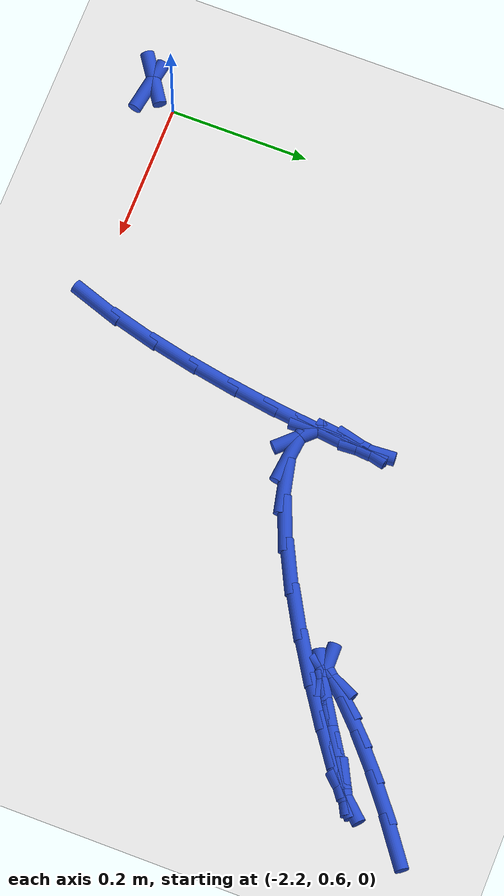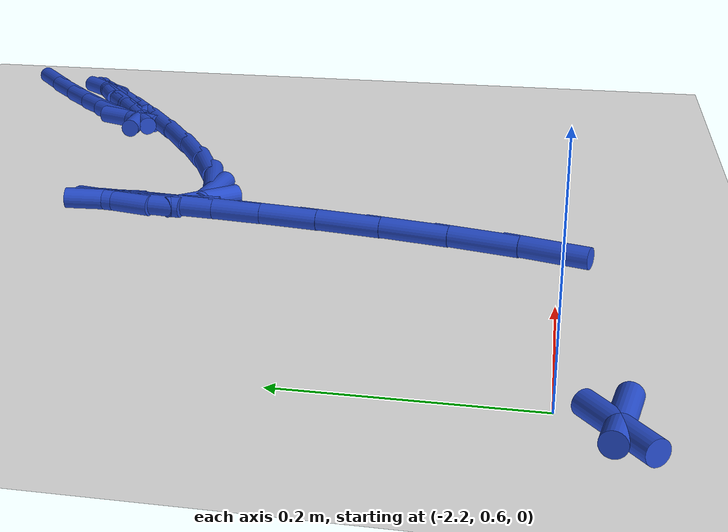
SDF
<sdf version="1.6">
 <world name="default">
  <model name="ground_plane">
   <static>1</static>
   <link name="link">
    <collision name="collision">
     <geometry><plane><normal>0 0 1</normal><size>100 100</size></plane></geometry>
     <surface><friction><ode><mu>100</mu><mu2>50</mu2></ode></friction></surface>
    </collision>
    <visual name="visual">
     <cast_shadows>0</cast_shadows>
     <geometry><plane><normal>0 0 1</normal><size>100 100</size></plane></geometry>
     <material>
      <script><uri>file://media/materials/scripts/gazebo.material</uri><name>Gazebo/WhiteGlow</name></script>
     </material>
    </visual>
   </link>
  </model>
  <model name="line">
   <link name="link_55">
    <pose>-1.3184268036266111 1.2615320595565362 0.01 0 1.57 0.6328845866517584</pose>
    <collision name="collision">
     <geometry><cylinder><radius>0.01</radius><length>0.08</length></cylinder></geometry>
    </collision>
    <visual name="visual">
     <material>
      <script><name>Gazebo/Blue</name><uri>file://media/materials/scripts/gazebo.material</uri></script>
     </material>
     <geometry><cylinder><radius>0.01</radius><length>0.08</length></cylinder></geometry>
    </visual>
   </link>
   <link name="link_56">
    <pose>-1.3685922306605784 1.2247336063615608 0.01 0 1.57 0.6759700859000737</pose>
    <collision name="collision">
     <geometry><cylinder><radius>0.01</radius><length>0.08</length></cylinder></geometry>
    </collision>
    <visual name="visual">
     <material>
      <script><name>Gazebo/Blue</name><uri>file://media/materials/scripts/gazebo.material</uri></script>
     </material>
     <geometry><cylinder><radius>0.01</radius><length>0.08</length></cylinder></geometry>
    </visual>
   </link>
   <link name="link_57">
    <pose>-1.4141213751803021 1.1882184229139683 0.01 0 1.57 0.7184749731573485</pose>
    <collision name="collision">
     <geometry><cylinder><radius>0.01</radius><length>0.08</length></cylinder></geometry>
    </collision>
    <visual name="visual">
     <material>
      <script><name>Gazebo/Blue</name><uri>file://media/materials/scripts/gazebo.material</uri></script>
     </material>
     <geometry><cylinder><radius>0.01</radius><length>0.08</length></cylinder></geometry>
    </visual>
   </link>
   <link name="link_58">
    <pose>-1.4528687512849614 1.154338749825329 0.01 0 1.57 0.769590123165994</pose>
    <collision name="collision">
     <geometry><cylinder><radius>0.01</radius><length>0.08</length></cylinder></geometry>
    </collision>
    <visual name="visual">
     <material>
      <script><name>Gazebo/Blue</name><uri>file://media/materials/scripts/gazebo.material</uri></script>
     </material>
     <geometry><cylinder><radius>0.01</radius><length>0.08</length></cylinder></geometry>
    </visual>
   </link>
   <link name="link_59">
    <pose>-1.4826888730737355 1.1254468277072123 0.01 0 1.57 0.854879111882033</pose>
    <collision name="collision">
     <geometry><cylinder><radius>0.01</radius><length>0.08</length></cylinder></geometry>
    </collision>
    <visual name="visual">
     <material>
      <script><name>Gazebo/Blue</name><uri>file://media/materials/scripts/gazebo.material</uri></script>
     </material>
     <geometry><cylinder><radius>0.01</radius><length>0.08</length></cylinder></geometry>
    </visual>
   </link>
   <link name="link_60">
    <pose>-1.5014362546458018 1.1038948971711888 0.01 0 1.57 1.1345410817419226</pose>
    <collision name="collision">
     <geometry><cylinder><radius>0.01</radius><length>0.08</length></cylinder></geometry>
    </collision>
    <visual name="visual">
     <material>
      <script><name>Gazebo/Blue</name><uri>file://media/materials/scripts/gazebo.material</uri></script>
     </material>
     <geometry><cylinder><radius>0.01</radius><length>0.08</length></cylinder></geometry>
    </visual>
   </link>
   <link name="link_61">
    <pose>-1.5069654101003405 1.0920351988288282 0.01 0 1.57 0.018786075864328632</pose>
    <collision name="collision">
     <geometry><cylinder><radius>0.01</radius><length>0.08</length></cylinder></geometry>
    </collision>
    <visual name="visual">
     <material>
      <script><name>Gazebo/Blue</name><uri>file://media/materials/scripts/gazebo.material</uri></script>
     </material>
     <geometry><cylinder><radius>0.01</radius><length>0.08</length></cylinder></geometry>
    </visual>
   </link>
   <link name="link_62">
    <pose>-1.4971308535365302 1.0922199732917006 0.01 0 1.57 0.4823575979765702</pose>
    <collision name="collision">
     <geometry><cylinder><radius>0.01</radius><length>0.08</length></cylinder></geometry>
    </collision>
    <visual name="visual">
     <material>
      <script><name>Gazebo/Blue</name><uri>file://media/materials/scripts/gazebo.material</uri></script>
     </material>
     <geometry><cylinder><radius>0.01</radius><length>0.08</length></cylinder></geometry>
    </visual>
   </link>
   <link name="link_63">
    <pose>-1.4706275743822779 1.1060973850619862 0.01 0 1.57 0.5562270535618038</pose>
    <collision name="collision">
     <geometry><cylinder><radius>0.01</radius><length>0.08</length></cylinder></geometry>
    </collision>
    <visual name="visual">
     <material>
      <script><name>Gazebo/Blue</name><uri>file://media/materials/scripts/gazebo.material</uri></script>
     </material>
     <geometry><cylinder><radius>0.01</radius><length>0.08</length></cylinder></geometry>
    </visual>
   </link>
   <link name="link_64">
    <pose>-1.433403098332669 1.1292400633540698 0.01 0 1.57 0.5761138794900177</pose>
    <collision name="collision">
     <geometry><cylinder><radius>0.01</radius><length>0.08</length></cylinder></geometry>
    </collision>
    <visual name="visual">
     <material>
      <script><name>Gazebo/Blue</name><uri>file://media/materials/scripts/gazebo.material</uri></script>
     </material>
     <geometry><cylinder><radius>0.01</radius><length>0.08</length></cylinder></geometry>
    </visual>
   </link>
   <link name="link_65">
    <pose>-1.3951128190272304 1.1541145126131491 0.01 0 1.57 0.570707777470858</pose>
    <collision name="collision">
     <geometry><cylinder><radius>0.01</radius><length>0.08</length></cylinder></geometry>
    </collision>
    <visual name="visual">
     <material>
      <script><name>Gazebo/Blue</name><uri>file://media/materials/scripts/gazebo.material</uri></script>
     </material>
     <geometry><cylinder><radius>0.01</radius><length>0.08</length></cylinder></geometry>
    </visual>
   </link>
   <link name="link_66">
    <pose>-1.3654419939996922 1.1731622199475367 0.01 0 1.57 0.47885668356282074</pose>
    <collision name="collision">
     <geometry><cylinder><radius>0.01</radius><length>0.08</length></cylinder></geometry>
    </collision>
    <visual name="visual">
     <material>
      <script><name>Gazebo/Blue</name><uri>file://media/materials/scripts/gazebo.material</uri></script>
     </material>
     <geometry><cylinder><radius>0.01</radius><length>0.08</length></cylinder></geometry>
    </visual>
   </link>
   <link name="link_67">
    <pose>-1.3532488192874783 1.1794924103885112 0.01 0 1.57 0.829918006784825</pose>
    <collision name="collision">
     <geometry><cylinder><radius>0.01</radius><length>0.08</length></cylinder></geometry>
    </collision>
    <visual name="visual">
     <material>
      <script><name>Gazebo/Blue</name><uri>file://media/materials/scripts/gazebo.material</uri></script>
     </material>
     <geometry><cylinder><radius>0.01</radius><length>0.08</length></cylinder></geometry>
    </visual>
   </link>
   <link name="link_68">
    <pose>-1.35975426115222 1.1723803171426823 0.01 0 1.57 0.6777075329046529</pose>
    <collision name="collision">
     <geometry><cylinder><radius>0.01</radius><length>0.08</length></cylinder></geometry>
    </collision>
    <visual name="visual">
     <material>
      <script><name>Gazebo/Blue</name><uri>file://media/materials/scripts/gazebo.material</uri></script>
     </material>
     <geometry><cylinder><radius>0.01</radius><length>0.08</length></cylinder></geometry>
    </visual>
   </link>
   <link name="link_69">
    <pose>-1.382052868286167 1.1544326856553333 0.01 0 1.57 0.639562951019323</pose>
    <collision name="collision">
     <geometry><cylinder><radius>0.01</radius><length>0.08</length></cylinder></geometry>
    </collision>
    <visual name="visual">
     <material>
      <script><name>Gazebo/Blue</name><uri>file://media/materials/scripts/gazebo.material</uri></script>
     </material>
     <geometry><cylinder><radius>0.01</radius><length>0.08</length></cylinder></geometry>
    </visual>
   </link>
   <link name="link_70">
    <pose>-1.4171988495770622 1.1282888301920768 0.01 0 1.57 0.6132166622590686</pose>
    <collision name="collision">
     <geometry><cylinder><radius>0.01</radius><length>0.08</length></cylinder></geometry>
    </collision>
    <visual name="visual">
     <material>
      <script><name>Gazebo/Blue</name><uri>file://media/materials/scripts/gazebo.material</uri></script>
     </material>
     <geometry><cylinder><radius>0.01</radius><length>0.08</length></cylinder></geometry>
    </visual>
   </link>
   <link name="link_71">
    <pose>-1.4622464139126476 1.0965880650185258 0.01 0 1.57 0.5873294278791967</pose>
    <collision name="collision">
     <geometry><cylinder><radius>0.01</radius><length>0.08</length></cylinder></geometry>
    </collision>
    <visual name="visual">
     <material>
      <script><name>Gazebo/Blue</name><uri>file://media/materials/scripts/gazebo.material</uri></script>
     </material>
     <geometry><cylinder><radius>0.01</radius><length>0.08</length></cylinder></geometry>
    </visual>
   </link>
   <link name="link_72">
    <pose>-1.5142497701806672 1.0619697044002923 0.01 0 1.57 0.557163939968873</pose>
    <collision name="collision">
     <geometry><cylinder><radius>0.01</radius><length>0.08</length></cylinder></geometry>
    </collision>
    <visual name="visual">
     <material>
      <script><name>Gazebo/Blue</name><uri>file://media/materials/scripts/gazebo.material</uri></script>
     </material>
     <geometry><cylinder><radius>0.01</radius><length>0.08</length></cylinder></geometry>
    </visual>
   </link>
   <link name="link_73">
    <pose>-1.570263127268862 1.0270730626029894 0.01 0 1.57 0.5180869836818354</pose>
    <collision name="collision">
     <geometry><cylinder><radius>0.01</radius><length>0.08</length></cylinder></geometry>
    </collision>
    <visual name="visual">
     <material>
      <script><name>Gazebo/Blue</name><uri>file://media/materials/scripts/gazebo.material</uri></script>
     </material>
     <geometry><cylinder><radius>0.01</radius><length>0.08</length></cylinder></geometry>
    </visual>
   </link>
   <link name="link_74">
    <pose>-1.6273406940649773 0.994537453892229 0.01 0 1.57 0.4627379797853526</pose>
    <collision name="collision">
     <geometry><cylinder><radius>0.01</radius><length>0.08</length></cylinder></geometry>
    </collision>
    <visual name="visual">
     <material>
      <script><name>Gazebo/Blue</name><uri>file://media/materials/scripts/gazebo.material</uri></script>
     </material>
     <geometry><cylinder><radius>0.01</radius><length>0.08</length></cylinder></geometry>
    </visual>
   </link>
   <link name="link_75">
    <pose>-1.6825366794567536 0.9670021925336243 0.01 0 1.57 0.3761885743820606</pose>
    <collision name="collision">
     <geometry><cylinder><radius>0.01</radius><length>0.08</length></cylinder></geometry>
    </collision>
    <visual name="visual">
     <material>
      <script><name>Gazebo/Blue</name><uri>file://media/materials/scripts/gazebo.material</uri></script>
     </material>
     <geometry><cylinder><radius>0.01</radius><length>0.08</length></cylinder></geometry>
    </visual>
   </link>
   <link name="link_76">
    <pose>-1.7329052923319341 0.9471065927927875 0.01 0 1.57 0.22204385169420318</pose>
    <collision name="collision">
     <geometry><cylinder><radius>0.01</radius><length>0.08</length></cylinder></geometry>
    </collision>
    <visual name="visual">
     <material>
      <script><name>Gazebo/Blue</name><uri>file://media/materials/scripts/gazebo.material</uri></script>
     </material>
     <geometry><cylinder><radius>0.01</radius><length>0.08</length></cylinder></geometry>
    </visual>
   </link>
   <link name="link_77">
    <pose>-1.775500741578263 0.9374899689353311 0.01 0 1.57 -0.10320880104079556</pose>
    <collision name="collision">
     <geometry><cylinder><radius>0.01</radius><length>0.08</length></cylinder></geometry>
    </collision>
    <visual name="visual">
     <material>
      <script><name>Gazebo/Blue</name><uri>file://media/materials/scripts/gazebo.material</uri></script>
     </material>
     <geometry><cylinder><radius>0.01</radius><length>0.08</length></cylinder></geometry>
    </visual>
   </link>
   <link name="link_78">
    <pose>-1.8073772360834823 0.9407916352268679 0.01 0 1.57 -0.8028634563644587</pose>
    <collision name="collision">
     <geometry><cylinder><radius>0.01</radius><length>0.08</length></cylinder></geometry>
    </collision>
    <visual name="visual">
     <material>
      <script><name>Gazebo/Blue</name><uri>file://media/materials/scripts/gazebo.material</uri></script>
     </material>
     <geometry><cylinder><radius>0.01</radius><length>0.08</length></cylinder></geometry>
    </visual>
   </link>
   <link name="link_79">
    <pose>-1.8255889847353346 0.9596509059330103 0.01 0 1.57 -1.5069426012306524</pose>
    <collision name="collision">
     <geometry><cylinder><radius>0.01</radius><length>0.08</length></cylinder></geometry>
    </collision>
    <visual name="visual">
     <material>
      <script><name>Gazebo/Blue</name><uri>file://media/materials/scripts/gazebo.material</uri></script>
     </material>
     <geometry><cylinder><radius>0.01</radius><length>0.08</length></cylinder></geometry>
    </visual>
   </link>
   <link name="link_80">
    <pose>-1.8278705154385124 0.9953329121556506 0.01 0 1.57 1.4436677827581392</pose>
    <collision name="collision">
     <geometry><cylinder><radius>0.01</radius><length>0.08</length></cylinder></geometry>
    </collision>
    <visual name="visual">
     <material>
      <script><name>Gazebo/Blue</name><uri>file://media/materials/scripts/gazebo.material</uri></script>
     </material>
     <geometry><cylinder><radius>0.01</radius><length>0.08</length></cylinder></geometry>
    </visual>
   </link>
   <link name="link_81">
    <pose>-1.8240726476049007 1.0250460330423465 0.01 0 1.57 1.328421006401657</pose>
    <collision name="collision">
     <geometry><cylinder><radius>0.01</radius><length>0.08</length></cylinder></geometry>
    </collision>
    <visual name="visual">
     <material>
      <script><name>Gazebo/Blue</name><uri>file://media/materials/scripts/gazebo.material</uri></script>
     </material>
     <geometry><cylinder><radius>0.01</radius><length>0.08</length></cylinder></geometry>
    </visual>
   </link>
   <link name="link_82">
    <pose>-1.8217979491536394 1.0342465573695097 0.01 0 1.57 -1.506038837583365</pose>
    <collision name="collision">
     <geometry><cylinder><radius>0.01</radius><length>0.08</length></cylinder></geometry>
    </collision>
    <visual name="visual">
     <material>
      <script><name>Gazebo/Blue</name><uri>file://media/materials/scripts/gazebo.material</uri></script>
     </material>
     <geometry><cylinder><radius>0.01</radius><length>0.08</length></cylinder></geometry>
    </visual>
   </link>
   <link name="link_83">
    <pose>-1.8212202264640514 1.0253377052123658 0.01 0 1.57 1.5208128409160766</pose>
    <collision name="collision">
     <geometry><cylinder><radius>0.01</radius><length>0.08</length></cylinder></geometry>
    </collision>
    <visual name="visual">
     <material>
      <script><name>Gazebo/Blue</name><uri>file://media/materials/scripts/gazebo.material</uri></script>
     </material>
     <geometry><cylinder><radius>0.01</radius><length>0.08</length></cylinder></geometry>
    </visual>
   </link>
   <link name="link_84">
    <pose>-1.8224437126826953 1.000880284347476 0.01 0 1.57 1.4874297601144753</pose>
    <collision name="collision">
     <geometry><cylinder><radius>0.01</radius><length>0.08</length></cylinder></geometry>
    </collision>
    <visual name="visual">
     <material>
      <script><name>Gazebo/Blue</name><uri>file://media/materials/scripts/gazebo.material</uri></script>
     </material>
     <geometry><cylinder><radius>0.01</radius><length>0.08</length></cylinder></geometry>
    </visual>
   </link>
   <link name="link_85">
    <pose>-1.8255726409561295 0.9634351025514017 0.01 0 1.57 1.4638655770725422</pose>
    <collision name="collision">
     <geometry><cylinder><radius>0.01</radius><length>0.08</length></cylinder></geometry>
    </collision>
    <visual name="visual">
     <material>
      <script><name>Gazebo/Blue</name><uri>file://media/materials/scripts/gazebo.material</uri></script>
     </material>
     <geometry><cylinder><radius>0.01</radius><length>0.08</length></cylinder></geometry>
    </visual>
   </link>
   <link name="link_86">
    <pose>-1.8307112444309124 0.9155629676007052 0.01 0 1.57 1.441406021894597</pose>
    <collision name="collision">
     <geometry><cylinder><radius>0.01</radius><length>0.08</length></cylinder></geometry>
    </collision>
    <visual name="visual">
     <material>
      <script><name>Gazebo/Blue</name><uri>file://media/materials/scripts/gazebo.material</uri></script>
     </material>
     <geometry><cylinder><radius>0.01</radius><length>0.08</length></cylinder></geometry>
    </visual>
   </link>
   <link name="link_87">
    <pose>-1.8379637562536026 0.8598246872719474 0.01 0 1.57 1.4168777724011747</pose>
    <collision name="collision">
     <geometry><cylinder><radius>0.01</radius><length>0.08</length></cylinder></geometry>
    </collision>
    <visual name="visual">
     <material>
      <script><name>Gazebo/Blue</name><uri>file://media/materials/scripts/gazebo.material</uri></script>
     </material>
     <geometry><cylinder><radius>0.01</radius><length>0.08</length></cylinder></geometry>
    </visual>
   </link>
   <link name="link_88">
    <pose>-1.8474344095707584 0.7987810693416887 0.01 0 1.57 1.387982483756194</pose>
    <collision name="collision">
     <geometry><cylinder><radius>0.01</radius><length>0.08</length></cylinder></geometry>
    </collision>
    <visual name="visual">
     <material>
      <script><name>Gazebo/Blue</name><uri>file://media/materials/scripts/gazebo.material</uri></script>
     </material>
     <geometry><cylinder><radius>0.01</radius><length>0.08</length></cylinder></geometry>
    </visual>
   </link>
   <link name="link_89">
    <pose>-1.8592274375289373 0.7349929215864922 0.01 0 1.57 1.3520727916070092</pose>
    <collision name="collision">
     <geometry><cylinder><radius>0.01</radius><length>0.08</length></cylinder></geometry>
    </collision>
    <visual name="visual">
     <material>
      <script><name>Gazebo/Blue</name><uri>file://media/materials/scripts/gazebo.material</uri></script>
     </material>
     <geometry><cylinder><radius>0.01</radius><length>0.08</length></cylinder></geometry>
    </visual>
   </link>
   <link name="link_90">
    <pose>-1.8734470732746995 0.6710210517829182 0.01 0 1.57 1.3052712809088163</pose>
    <collision name="collision">
     <geometry><cylinder><radius>0.01</radius><length>0.08</length></cylinder></geometry>
    </collision>
    <visual name="visual">
     <material>
      <script><name>Gazebo/Blue</name><uri>file://media/materials/scripts/gazebo.material</uri></script>
     </material>
     <geometry><cylinder><radius>0.01</radius><length>0.08</length></cylinder></geometry>
    </visual>
   </link>
   <link name="link_91">
    <pose>-1.8901975499546018 0.6094262677075293 0.01 0 1.57 1.2411256188801065</pose>
    <collision name="collision">
     <geometry><cylinder><radius>0.01</radius><length>0.08</length></cylinder></geometry>
    </collision>
    <visual name="visual">
     <material>
      <script><name>Gazebo/Blue</name><uri>file://media/materials/scripts/gazebo.material</uri></script>
     </material>
     <geometry><cylinder><radius>0.01</radius><length>0.08</length></cylinder></geometry>
    </visual>
   </link>
   <link name="link_103">
    <pose>-2.220750919686945 0.5557581963567413 0.01 0 1.57 -0.17044051881066927</pose>
    <collision name="collision">
     <geometry><cylinder><radius>0.01</radius><length>0.08</length></cylinder></geometry>
    </collision>
    <visual name="visual">
     <material>
      <script><name>Gazebo/Blue</name><uri>file://media/materials/scripts/gazebo.material</uri></script>
     </material>
     <geometry><cylinder><radius>0.01</radius><length>0.08</length></cylinder></geometry>
    </visual>
   </link>
   <link name="link_104">
    <pose>-2.2329539843655257 0.5578584701587285 0.01 0 1.57 0.5967832256474492</pose>
    <collision name="collision">
     <geometry><cylinder><radius>0.01</radius><length>0.08</length></cylinder></geometry>
    </collision>
    <visual name="visual">
     <material>
      <script><name>Gazebo/Blue</name><uri>file://media/materials/scripts/gazebo.material</uri></script>
     </material>
     <geometry><cylinder><radius>0.01</radius><length>0.08</length></cylinder></geometry>
    </visual>
   </link>
  </model>
 </world>
</sdf>
